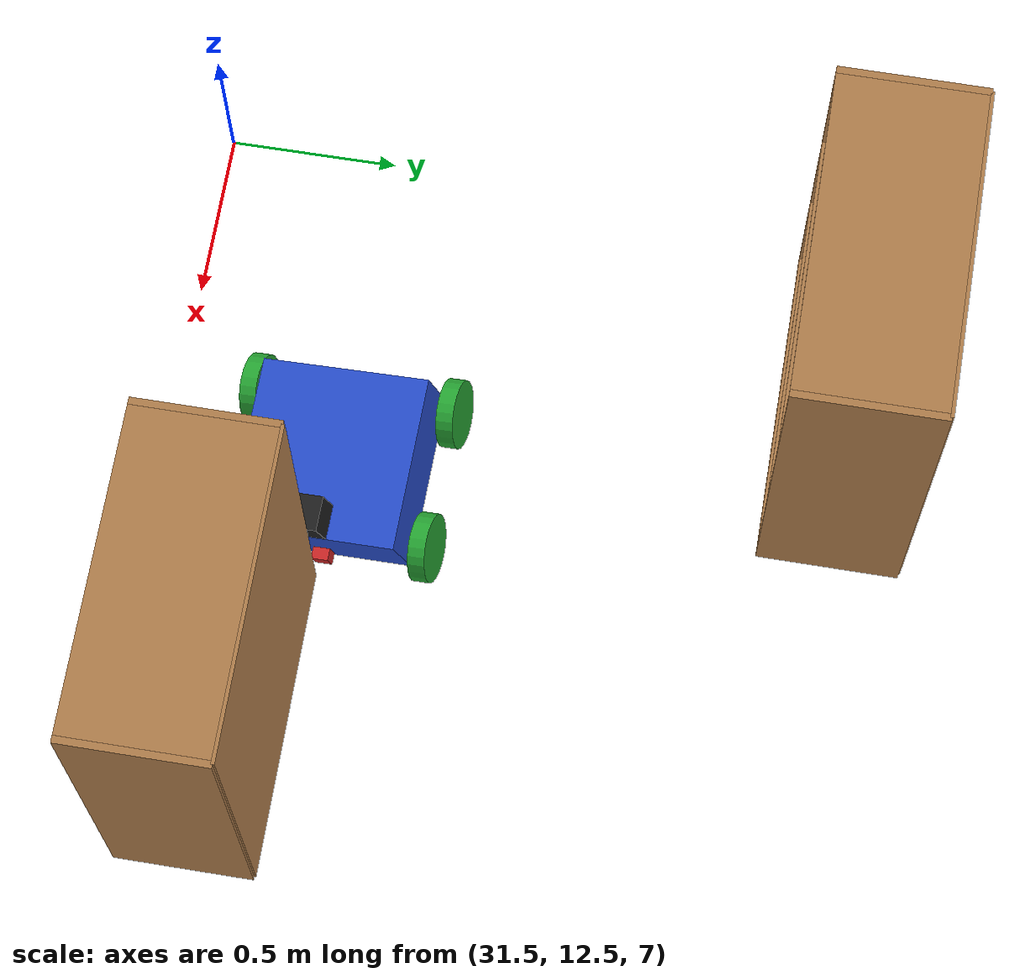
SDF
<sdf version="1.7">
 <world name="default">
  <light name="sun" type="directional">
   <cast_shadows>0</cast_shadows>
   <pose>0 0 30 0 -0 0</pose>
   <diffuse>0.8 0.8 0.8 1</diffuse>
   <specular>0.2 0.2 0.2 1</specular>
   <attenuation>
    <range>1000</range>
    <constant>0.9</constant>
    <linear>0.01</linear>
    <quadratic>0.001</quadratic>
   </attenuation>
   <direction>-0.5 0.1 -0.9</direction>
   <spot><inner_angle>0</inner_angle><outer_angle>0</outer_angle><falloff>0</falloff></spot>
  </light>
  <model name="ground_plane">
   <static>1</static>
   <link name="link">
    <collision name="collision">
     <geometry><plane><normal>0 0 1</normal><size>100 100</size></plane></geometry>
     <surface>
      <contact><collide_bitmask>65535</collide_bitmask></contact>
      <friction><ode><mu>100</mu><mu2>50</mu2></ode></friction>
     </surface>
    </collision>
    <visual name="visual">
     <cast_shadows>0</cast_shadows>
     <geometry><plane><normal>0 0 1</normal><size>100 100</size></plane></geometry>
     <material>
      <script><uri>file://media/materials/scripts/gazebo.material</uri><name>Gazebo/Grey</name></script>
     </material>
    </visual>
   </link>
  </model>
  <gravity>0 0 -9.8</gravity>
  <magnetic_field>6e-06 2.3e-05 -4.2e-05</magnetic_field>
  <atmosphere type="adiabatic"/>
  <physics type="ode">
   <max_step_size>0.001</max_step_size>
   <real_time_factor>1</real_time_factor>
   <real_time_update_rate>1000</real_time_update_rate>
  </physics>
  <scene><ambient>0.4 0.4 0.4 1</ambient><background>0.7 0.7 0.7 1</background><shadows>0</shadows></scene>
  <spherical_coordinates>
   <surface_model>EARTH_WGS84</surface_model>
   <latitude_deg>0</latitude_deg>
   <longitude_deg>0</longitude_deg>
   <elevation>0</elevation>
   <heading_deg>0</heading_deg>
  </spherical_coordinates>
  <model name="fourbot">
   <link name="robot_footprint">
    <inertial>
     <pose>0.001722 0 0 0 -0 0</pose>
     <mass>15.1</mass>
     <inertia>
      <ixx>0.147119</ixx>
      <ixy>0</ixy>
      <ixz>-3.96556e-07</ixz>
      <iyy>0.341669</iyy>
      <iyz>0</iyz>
      <izz>0.404552</izz>
     </inertia>
    </inertial>
    <collision name="robot_footprint_fixed_joint_lump__collision_collision">
     <pose>0 0 0.05 0 -0 0</pose>
     <geometry><box><size>0.5 0.5 0.2</size></box></geometry>
    </collision>
    <collision name="robot_footprint_fixed_joint_lump__camera_collision_1">
     <pose>0.26 0 0 0 -0 0</pose>
     <geometry><box><size>0.05 0.05 0.05</size></box></geometry>
    </collision>
    <collision name="robot_footprint_fixed_joint_lump__depthcam_collision_2">
     <pose>0.2 0 0.2 0 -0 0</pose>
     <geometry><box><size>0.1 0.1 0.1</size></box></geometry>
    </collision>
    <visual name="robot_footprint_fixed_joint_lump__chassis_visual_visual">
     <pose>0 0 0.05 0 -0 0</pose>
     <geometry><box><size>0.5 0.5 0.2</size></box></geometry>
     <material>
      <script><name>Gazebo/Blue</name><uri>file://media/materials/scripts/gazebo.material</uri></script>
     </material>
    </visual>
    <visual name="robot_footprint_fixed_joint_lump__camera_visual_1">
     <pose>0.26 0 0 0 -0 0</pose>
     <geometry><box><size>0.05 0.05 0.05</size></box></geometry>
     <material>
      <script><name>Gazebo/Red</name><uri>file://media/materials/scripts/gazebo.material</uri></script>
     </material>
    </visual>
    <visual name="robot_footprint_fixed_joint_lump__depthcam_visual_2">
     <pose>0.2 0 0.2 0 -0 0</pose>
     <geometry><box><size>0.1 0.1 0.1</size></box></geometry>
     <material>
      <script><name>Gazebo/Black</name><uri>file://media/materials/scripts/gazebo.material</uri></script>
     </material>
    </visual>
    <sensor name="depthcam_camera" type="depth">
     <update_rate>20</update_rate>
     <camera>
      <horizontal_fov>1.0472</horizontal_fov>
      <image><width>640</width><height>480</height><format>R8G8B8</format></image>
      <clip><near>0.05</near><far>3</far></clip>
     </camera>
     <plugin name="depthcam_controller" filename="libgazebo_ros_openni_kinect.so">
      <baseline>0.2</baseline>
      <alwaysOn>1</alwaysOn>
      <updateRate>1.0</updateRate>
      <cameraName>depthcam_ir</cameraName>
      <imageTopicName>/depthcam/color/image_raw</imageTopicName>
      <cameraInfoTopicName>/depthcam/color/camera_info</cameraInfoTopicName>
      <depthImageTopicName>/depthcam/depth/image_raw</depthImageTopicName>
      <depthImageInfoTopicName>/depthcam/depth/camera_info</depthImageInfoTopicName>
      <pointCloudTopicName>/depthcam/depth/points</pointCloudTopicName>
      <frameName>depthcam</frameName>
      <pointCloudCutoff>0.5</pointCloudCutoff>
      <pointCloudCutoffMax>3.0</pointCloudCutoffMax>
      <distortionK1>0.00000001</distortionK1>
      <distortionK2>0.00000001</distortionK2>
      <distortionK3>0.00000001</distortionK3>
      <distortionT1>0.00000001</distortionT1>
      <distortionT2>0.00000001</distortionT2>
      <CxPrime>0</CxPrime>
      <Cx>0</Cx>
      <Cy>0</Cy>
      <focalLength>0</focalLength>
      <hackBaseline>0</hackBaseline>
      <robotNamespace>/</robotNamespace>
     </plugin>
     <pose>0.2 0 0.2 0 -0 0</pose>
    </sensor>
   </link>
   <joint name="left_wheel_hinge_back" type="revolute">
    <pose relative_to="robot_footprint">-0.2 0.3 0 0 -0 0</pose>
    <parent>robot_footprint</parent>
    <child>left_wheel_back</child>
    <axis>
     <xyz>0 1 0</xyz>
     <limit><effort>10000</effort><velocity>1000</velocity><lower>-1e+16</lower><upper>1e+16</upper></limit>
     <dynamics>
      <damping>1</damping>
      <friction>1</friction>
      <spring_reference>0</spring_reference>
      <spring_stiffness>0</spring_stiffness>
     </dynamics>
    </axis>
   </joint>
   <link name="left_wheel_back">
    <pose relative_to="left_wheel_hinge_back">0 0 0 0 -0 0</pose>
    <inertial>
     <pose>0 0 0 -0 1.5707 1.5707</pose>
     <mass>5</mass>
     <inertia><ixx>0.1</ixx><ixy>0</ixy><ixz>0</ixz><iyy>0.1</iyy><iyz>0</iyz><izz>0.1</izz></inertia>
    </inertial>
    <collision name="left_wheel_back_collision">
     <pose>0 0 0 1.57089 1.57079 -3.14159</pose>
     <geometry><cylinder><length>0.05</length><radius>0.1</radius></cylinder></geometry>
     <surface>
      <contact><ode><kp>1e+06</kp><kd>100</kd><max_vel>1</max_vel><min_depth>0</min_depth></ode></contact>
      <friction><ode><mu>1</mu><mu2>1</mu2></ode></friction>
     </surface>
    </collision>
    <visual name="left_wheel_back_visual">
     <pose>0 0 0 1.57089 1.57079 -3.14159</pose>
     <geometry><cylinder><length>0.05</length><radius>0.1</radius></cylinder></geometry>
     <material>
      <script><name>Gazebo/Green</name><uri>file://media/materials/scripts/gazebo.material</uri></script>
     </material>
    </visual>
   </link>
   <joint name="left_wheel_hinge_front" type="revolute">
    <pose relative_to="robot_footprint">0.2 0.3 0 0 -0 0</pose>
    <parent>robot_footprint</parent>
    <child>left_wheel_front</child>
    <axis>
     <xyz>0 1 0</xyz>
     <limit><effort>10000</effort><velocity>1000</velocity><lower>-1e+16</lower><upper>1e+16</upper></limit>
     <dynamics>
      <damping>1</damping>
      <friction>1</friction>
      <spring_reference>0</spring_reference>
      <spring_stiffness>0</spring_stiffness>
     </dynamics>
    </axis>
   </joint>
   <link name="left_wheel_front">
    <pose relative_to="left_wheel_hinge_front">0 0 0 0 -0 0</pose>
    <inertial>
     <pose>0 0 0 -0 1.5707 1.5707</pose>
     <mass>5</mass>
     <inertia><ixx>0.1</ixx><ixy>0</ixy><ixz>0</ixz><iyy>0.1</iyy><iyz>0</iyz><izz>0.1</izz></inertia>
    </inertial>
    <collision name="left_wheel_front_collision">
     <pose>0 0 0 1.57089 1.57079 -3.14159</pose>
     <geometry><cylinder><length>0.05</length><radius>0.1</radius></cylinder></geometry>
     <surface>
      <contact><ode><kp>1e+06</kp><kd>100</kd><max_vel>1</max_vel><min_depth>0</min_depth></ode></contact>
      <friction><ode><mu>1</mu><mu2>1</mu2></ode></friction>
     </surface>
    </collision>
    <visual name="left_wheel_front_visual">
     <pose>0 0 0 1.57089 1.57079 -3.14159</pose>
     <geometry><cylinder><length>0.05</length><radius>0.1</radius></cylinder></geometry>
     <material>
      <script><name>Gazebo/Green</name><uri>file://media/materials/scripts/gazebo.material</uri></script>
     </material>
    </visual>
   </link>
   <joint name="right_wheel_hinge_back" type="revolute">
    <pose relative_to="robot_footprint">-0.2 -0.3 0 0 -0 0</pose>
    <parent>robot_footprint</parent>
    <child>right_wheel_back</child>
    <axis>
     <xyz>0 1 0</xyz>
     <limit><effort>10000</effort><velocity>1000</velocity><lower>-1e+16</lower><upper>1e+16</upper></limit>
     <dynamics>
      <damping>1</damping>
      <friction>1</friction>
      <spring_reference>0</spring_reference>
      <spring_stiffness>0</spring_stiffness>
     </dynamics>
    </axis>
   </joint>
   <link name="right_wheel_back">
    <pose relative_to="right_wheel_hinge_back">0 0 0 0 -0 0</pose>
    <inertial>
     <pose>0 0 0 -0 1.5707 1.5707</pose>
     <mass>5</mass>
     <inertia><ixx>0.1</ixx><ixy>0</ixy><ixz>0</ixz><iyy>0.1</iyy><iyz>0</iyz><izz>0.1</izz></inertia>
    </inertial>
    <collision name="right_wheel_back_collision">
     <pose>0 0 0 1.57089 1.57079 -3.14159</pose>
     <geometry><cylinder><length>0.05</length><radius>0.1</radius></cylinder></geometry>
     <surface>
      <contact><ode><kp>1e+06</kp><kd>100</kd><max_vel>1</max_vel><min_depth>0</min_depth></ode></contact>
      <friction><ode><mu>1</mu><mu2>1</mu2></ode></friction>
     </surface>
    </collision>
    <visual name="right_wheel_back_visual">
     <pose>0 0 0 1.57089 1.57079 -3.14159</pose>
     <geometry><cylinder><length>0.05</length><radius>0.1</radius></cylinder></geometry>
     <material>
      <script><name>Gazebo/Green</name><uri>file://media/materials/scripts/gazebo.material</uri></script>
     </material>
    </visual>
   </link>
   <joint name="right_wheel_hinge_front" type="revolute">
    <pose relative_to="robot_footprint">0.2 -0.3 0 0 -0 0</pose>
    <parent>robot_footprint</parent>
    <child>right_wheel_front</child>
    <axis>
     <xyz>0 1 0</xyz>
     <limit><effort>10000</effort><velocity>1000</velocity><lower>-1e+16</lower><upper>1e+16</upper></limit>
     <dynamics>
      <damping>1</damping>
      <friction>1</friction>
      <spring_reference>0</spring_reference>
      <spring_stiffness>0</spring_stiffness>
     </dynamics>
    </axis>
   </joint>
   <link name="right_wheel_front">
    <pose relative_to="right_wheel_hinge_front">0 0 0 0 -0 0</pose>
    <inertial>
     <pose>0 0 0 -0 1.5707 1.5707</pose>
     <mass>5</mass>
     <inertia><ixx>0.1</ixx><ixy>0</ixy><ixz>0</ixz><iyy>0.1</iyy><iyz>0</iyz><izz>0.1</izz></inertia>
    </inertial>
    <collision name="right_wheel_front_collision">
     <pose>0 0 0 1.57089 1.57079 -3.14159</pose>
     <geometry><cylinder><length>0.05</length><radius>0.1</radius></cylinder></geometry>
     <surface>
      <contact><ode><kp>1e+06</kp><kd>100</kd><max_vel>1</max_vel><min_depth>0</min_depth></ode></contact>
      <friction><ode><mu>1</mu><mu2>1</mu2></ode></friction>
     </surface>
    </collision>
    <visual name="right_wheel_front_visual">
     <pose>0 0 0 1.57089 1.57079 -3.14159</pose>
     <geometry><cylinder><length>0.05</length><radius>0.1</radius></cylinder></geometry>
     <material>
      <script><name>Gazebo/Green</name><uri>file://media/materials/scripts/gazebo.material</uri></script>
     </material>
    </visual>
   </link>
   <plugin name="skid_steer_drive_controller" filename="libgazebo_ros_skid_steer_drive.so">
    <updateRate>10.0</updateRate>
    <robotNamespace>/fourbot</robotNamespace>
    <leftFrontJoint>left_wheel_hinge_front</leftFrontJoint>
    <rightFrontJoint>right_wheel_hinge_front</rightFrontJoint>
    <leftRearJoint>left_wheel_hinge_back</leftRearJoint>
    <rightRearJoint>right_wheel_hinge_back</rightRearJoint>
    <wheelSeparation>0.4</wheelSeparation>
    <wheelDiameter>0.2</wheelDiameter>
    <robotBaseFrame>robot_footprint</robotBaseFrame>
    <torque>10</torque>
    <topicName>cmd_vel</topicName>
    <odometryTopic>odom</odometryTopic>
    <odometryFrame>odom</odometryFrame>
    <commandTopic>cmd_vel</commandTopic>
    <topic_name_twist>cmd_vel</topic_name_twist>
    <topic_name_odometry>odom</topic_name_odometry>
    <topic_name_joint>joint</topic_name_joint>
    <broadcastTF>1</broadcastTF>
    <covariance_x>0.0001</covariance_x>
    <covariance_y>0.0001</covariance_y>
    <covariance_yaw>0.01</covariance_yaw>
   </plugin>
   <static>0</static>
   <plugin name="imu_plugin" filename="libgazebo_ros_imu.so">
    <alwaysOn>1</alwaysOn>
    <bodyName>robot_footprint</bodyName>
    <topicName>imu</topicName>
    <serviceName>imu_service</serviceName>
    <gaussianNoise>0.0</gaussianNoise>
    <updateRate>20.0</updateRate>
    <robotNamespace>/</robotNamespace>
   </plugin>
   <pose>32.5268 13.034 7.11465 0.198176 0.129588 -0.033212</pose>
  </model>
  <model name="bookshelf">
   <static>1</static>
   <link name="link">
    <inertial><mass>1</mass></inertial>
    <collision name="back">
     <pose>0 0.005 0.6 0 -0 0</pose>
     <geometry><box><size>0.9 0.01 1.2</size></box></geometry>
    </collision>
    <visual name="visual1">
     <pose>0 0.005 0.6 0 -0 0</pose>
     <geometry><box><size>0.9 0.01 1.2</size></box></geometry>
     <material>
      <script><uri>file://media/materials/scripts/gazebo.material</uri><name>Gazebo/Wood</name></script>
     </material>
    </visual>
    <collision name="left_side">
     <pose>0.45 -0.195 0.6 0 -0 0</pose>
     <geometry><box><size>0.02 0.4 1.2</size></box></geometry>
    </collision>
    <visual name="visual2">
     <pose>0.45 -0.195 0.6 0 -0 0</pose>
     <geometry><box><size>0.02 0.4 1.2</size></box></geometry>
     <material>
      <script><uri>file://media/materials/scripts/gazebo.material</uri><name>Gazebo/Wood</name></script>
     </material>
    </visual>
    <collision name="right_side">
     <pose>-0.45 -0.195 0.6 0 -0 0</pose>
     <geometry><box><size>0.02 0.4 1.2</size></box></geometry>
    </collision>
    <visual name="visual3">
     <pose>-0.45 -0.195 0.6 0 -0 0</pose>
     <geometry><box><size>0.02 0.4 1.2</size></box></geometry>
     <material>
      <script><uri>file://media/materials/scripts/gazebo.material</uri><name>Gazebo/Wood</name></script>
     </material>
    </visual>
    <collision name="bottom">
     <pose>0 -0.195 0.03 0 -0 0</pose>
     <geometry><box><size>0.88 0.4 0.06</size></box></geometry>
    </collision>
    <visual name="visual4">
     <pose>0 -0.195 0.03 0 -0 0</pose>
     <geometry><box><size>0.88 0.4 0.06</size></box></geometry>
     <material>
      <script><uri>file://media/materials/scripts/gazebo.material</uri><name>Gazebo/Wood</name></script>
     </material>
    </visual>
    <collision name="top">
     <pose>0 -0.195 1.19 0 -0 0</pose>
     <geometry><box><size>0.88 0.4 0.02</size></box></geometry>
    </collision>
    <visual name="visual5">
     <pose>0 -0.195 1.19 0 -0 0</pose>
     <geometry><box><size>0.88 0.4 0.02</size></box></geometry>
     <material>
      <script><uri>file://media/materials/scripts/gazebo.material</uri><name>Gazebo/Wood</name></script>
     </material>
    </visual>
    <collision name="low_shelf">
     <pose>0 -0.195 0.43 0 -0 0</pose>
     <geometry><box><size>0.88 0.4 0.02</size></box></geometry>
    </collision>
    <visual name="visual6">
     <pose>0 -0.195 0.43 0 -0 0</pose>
     <geometry><box><size>0.88 0.4 0.02</size></box></geometry>
     <material>
      <script><uri>file://media/materials/scripts/gazebo.material</uri><name>Gazebo/Wood</name></script>
     </material>
    </visual>
    <collision name="high_shelf">
     <pose>0 -0.195 0.8 0 -0 0</pose>
     <geometry><box><size>0.88 0.4 0.02</size></box></geometry>
    </collision>
    <visual name="visual7">
     <pose>0 -0.195 0.8 0 -0 0</pose>
     <geometry><box><size>0.88 0.4 0.02</size></box></geometry>
     <material>
      <script><uri>file://media/materials/scripts/gazebo.material</uri><name>Gazebo/Wood</name></script>
     </material>
    </visual>
   </link>
   <pose>32.1945 14.6408 7.2545 0 -0 0</pose>
  </model>
  <model name="bookshelf_0">
   <static>1</static>
   <link name="link">
    <inertial><mass>1</mass></inertial>
    <collision name="back">
     <pose>0 0.005 0.6 0 -0 0</pose>
     <geometry><box><size>0.9 0.01 1.2</size></box></geometry>
    </collision>
    <visual name="visual1">
     <pose>0 0.005 0.6 0 -0 0</pose>
     <geometry><box><size>0.9 0.01 1.2</size></box></geometry>
     <material>
      <script><uri>file://media/materials/scripts/gazebo.material</uri><name>Gazebo/Wood</name></script>
     </material>
    </visual>
    <collision name="left_side">
     <pose>0.45 -0.195 0.6 0 -0 0</pose>
     <geometry><box><size>0.02 0.4 1.2</size></box></geometry>
    </collision>
    <visual name="visual2">
     <pose>0.45 -0.195 0.6 0 -0 0</pose>
     <geometry><box><size>0.02 0.4 1.2</size></box></geometry>
     <material>
      <script><uri>file://media/materials/scripts/gazebo.material</uri><name>Gazebo/Wood</name></script>
     </material>
    </visual>
    <collision name="right_side">
     <pose>-0.45 -0.195 0.6 0 -0 0</pose>
     <geometry><box><size>0.02 0.4 1.2</size></box></geometry>
    </collision>
    <visual name="visual3">
     <pose>-0.45 -0.195 0.6 0 -0 0</pose>
     <geometry><box><size>0.02 0.4 1.2</size></box></geometry>
     <material>
      <script><uri>file://media/materials/scripts/gazebo.material</uri><name>Gazebo/Wood</name></script>
     </material>
    </visual>
    <collision name="bottom">
     <pose>0 -0.195 0.03 0 -0 0</pose>
     <geometry><box><size>0.88 0.4 0.06</size></box></geometry>
    </collision>
    <visual name="visual4">
     <pose>0 -0.195 0.03 0 -0 0</pose>
     <geometry><box><size>0.88 0.4 0.06</size></box></geometry>
     <material>
      <script><uri>file://media/materials/scripts/gazebo.material</uri><name>Gazebo/Wood</name></script>
     </material>
    </visual>
    <collision name="top">
     <pose>0 -0.195 1.19 0 -0 0</pose>
     <geometry><box><size>0.88 0.4 0.02</size></box></geometry>
    </collision>
    <visual name="visual5">
     <pose>0 -0.195 1.19 0 -0 0</pose>
     <geometry><box><size>0.88 0.4 0.02</size></box></geometry>
     <material>
      <script><uri>file://media/materials/scripts/gazebo.material</uri><name>Gazebo/Wood</name></script>
     </material>
    </visual>
    <collision name="low_shelf">
     <pose>0 -0.195 0.43 0 -0 0</pose>
     <geometry><box><size>0.88 0.4 0.02</size></box></geometry>
    </collision>
    <visual name="visual6">
     <pose>0 -0.195 0.43 0 -0 0</pose>
     <geometry><box><size>0.88 0.4 0.02</size></box></geometry>
     <material>
      <script><uri>file://media/materials/scripts/gazebo.material</uri><name>Gazebo/Wood</name></script>
     </material>
    </visual>
    <collision name="high_shelf">
     <pose>0 -0.195 0.8 0 -0 0</pose>
     <geometry><box><size>0.88 0.4 0.02</size></box></geometry>
    </collision>
    <visual name="visual7">
     <pose>0 -0.195 0.8 0 -0 0</pose>
     <geometry><box><size>0.88 0.4 0.02</size></box></geometry>
     <material>
      <script><uri>file://media/materials/scripts/gazebo.material</uri><name>Gazebo/Wood</name></script>
     </material>
    </visual>
   </link>
   <pose>33.271 12.9944 6.97511 0 -0 0</pose>
  </model>
 </world>
</sdf>
